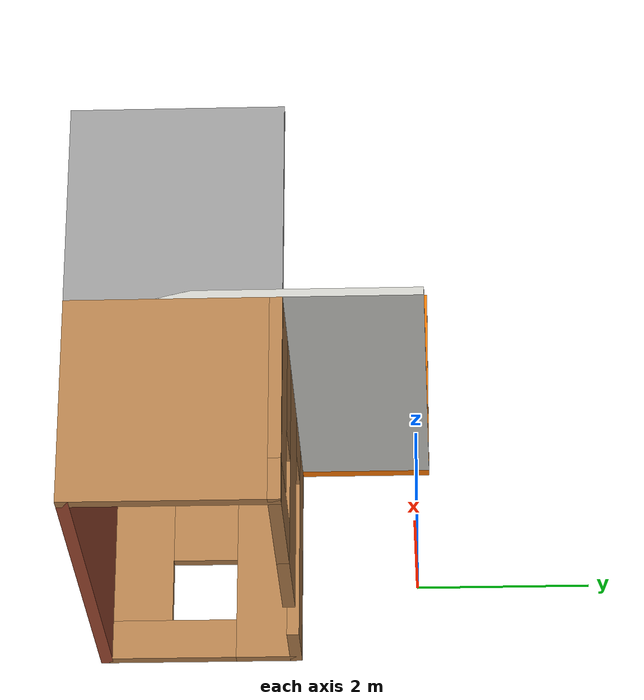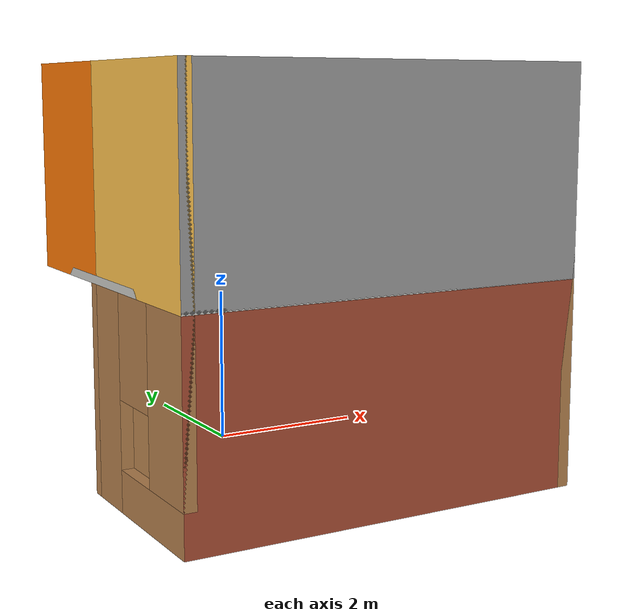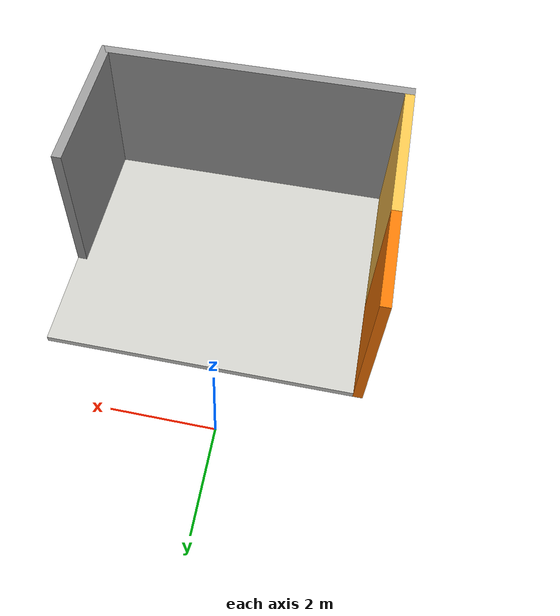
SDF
<?xml version='1.0'?>
<sdf version='1.6'>
  <model name='Roost'>
    <pose frame=''>0.155 -1.915 0 0 -0 0</pose>
    <link name='Floor_2'>
      <collision name='Floor_2_Collision'>
        <geometry>
          <box>
            <size>5 4.1 0.1</size>
          </box>
        </geometry>
        <pose frame=''>0 0 0.05 0 -0 0</pose>
      </collision>
      <visual name='Floor_2_Visual'>
        <pose frame=''>0 0 0.05 0 -0 0</pose>
        <geometry>
          <box>
            <size>5 4.1 0.1</size>
          </box>
        </geometry>
        <material>
          <script>
            <uri>file://media/materials/scripts/gazebo.material</uri>
            <name>Gazebo/CeilingTiled</name>
          </script>
          <ambient>1 1 1 1</ambient>
        </material>
        <meta>
          <layer>1</layer>
        </meta>
      </visual>
      <pose frame=''>0 0 2.5 0 -0 0</pose>
    </link>
    <link name='Wall_0'>
      <pose frame=''>-2.425 -0.8 0 0 -0 -1.5708</pose>
      <visual name='Wall_0_Visual_0'>
        <pose frame=''>-0.842552 0 1.25 0 -0 0</pose>
        <geometry>
          <box>
            <size>0.814896 0.15 2.5</size>
          </box>
        </geometry>
        <material>
          <script>
            <uri>file://media/materials/scripts/gazebo.material</uri>
            <name>Gazebo/Wood</name>
          </script>
          <ambient>1 1 1 1</ambient>
        </material>
        <meta>
          <layer>0</layer>
        </meta>
      </visual>
      <collision name='Wall_0_Collision_0'>
        <geometry>
          <box>
            <size>0.814896 0.15 2.5</size>
          </box>
        </geometry>
        <pose frame=''>-0.842552 0 1.25 0 -0 0</pose>
      </collision>
      <visual name='Wall_0_Visual_1'>
        <pose frame=''>0.407448 0 0.25 0 -0 0</pose>
        <geometry>
          <box>
            <size>1.6851 0.15 0.5</size>
          </box>
        </geometry>
        <material>
          <script>
            <uri>file://media/materials/scripts/gazebo.material</uri>
            <name>Gazebo/Wood</name>
          </script>
          <ambient>1 1 1 1</ambient>
        </material>
        <meta>
          <layer>0</layer>
        </meta>
      </visual>
      <collision name='Wall_0_Collision_1'>
        <geometry>
          <box>
            <size>1.6851 0.15 0.5</size>
          </box>
        </geometry>
        <pose frame=''>0.407448 0 0.25 0 -0 0</pose>
      </collision>
      <visual name='Wall_0_Visual_2'>
        <pose frame=''>0.807448 0 1.5 0 -0 0</pose>
        <geometry>
          <box>
            <size>0.885104 0.15 2</size>
          </box>
        </geometry>
        <material>
          <script>
            <uri>file://media/materials/scripts/gazebo.material</uri>
            <name>Gazebo/Wood</name>
          </script>
          <ambient>1 1 1 1</ambient>
        </material>
        <meta>
          <layer>0</layer>
        </meta>
      </visual>
      <collision name='Wall_0_Collision_2'>
        <geometry>
          <box>
            <size>0.885104 0.15 2</size>
          </box>
        </geometry>
        <pose frame=''>0.807448 0 1.5 0 -0 0</pose>
      </collision>
      <visual name='Wall_0_Visual_3'>
        <pose frame=''>-0.035104 0 1.9 0 -0 0</pose>
        <geometry>
          <box>
            <size>0.8 0.15 1.2</size>
          </box>
        </geometry>
        <material>
          <script>
            <uri>file://media/materials/scripts/gazebo.material</uri>
            <name>Gazebo/Wood</name>
          </script>
          <ambient>1 1 1 1</ambient>
        </material>
        <meta>
          <layer>0</layer>
        </meta>
      </visual>
      <collision name='Wall_0_Collision_3'>
        <geometry>
          <box>
            <size>0.8 0.15 1.2</size>
          </box>
        </geometry>
        <pose frame=''>-0.035104 0 1.9 0 -0 0</pose>
      </collision>
    </link>
    <link name='Wall_1'>
      <collision name='Wall_1_Collision'>
        <geometry>
          <box>
            <size>5 0.15 2.5</size>
          </box>
        </geometry>
        <pose frame=''>0 0 1.25 0 -0 0</pose>
      </collision>
      <visual name='Wall_1_Visual'>
        <pose frame=''>0 0 1.25 0 -0 0</pose>
        <geometry>
          <box>
            <size>5 0.15 2.5</size>
          </box>
        </geometry>
        <material>
          <script>
            <uri>file://media/materials/scripts/gazebo.material</uri>
            <name>Gazebo/Bricks</name>
          </script>
          <ambient>1 1 1 1</ambient>
        </material>
        <meta>
          <layer>0</layer>
        </meta>
      </visual>
      <pose frame=''>0 -1.975 0 0 -0 0</pose>
    </link>
    <link name='Wall_19'>
      <collision name='Wall_19_Collision'>
        <geometry>
          <box>
            <size>2.5 0.15 2.5</size>
          </box>
        </geometry>
        <pose frame=''>0 0 1.25 0 -0 0</pose>
      </collision>
      <visual name='Wall_19_Visual'>
        <pose frame=''>0 0 1.25 0 -0 0</pose>
        <geometry>
          <box>
            <size>2.5 0.15 2.5</size>
          </box>
        </geometry>
        <material>
          <script>
            <uri>file://media/materials/scripts/gazebo.material</uri>
            <name>Gazebo/Grey</name>
          </script>
          <ambient>1 0.764706 0.305882 1</ambient>
        </material>
        <meta>
          <layer>1</layer>
        </meta>
      </visual>
      <pose frame=''>-2.425 -0.8 2.5 0 -0 -1.5708</pose>
    </link>
    <link name='Wall_2'>
      <collision name='Wall_2_Collision'>
        <geometry>
          <box>
            <size>2.5 0.15 2.5</size>
          </box>
        </geometry>
        <pose frame=''>0 0 1.25 0 -0 0</pose>
      </collision>
      <visual name='Wall_2_Visual'>
        <pose frame=''>0 0 1.25 0 -0 0</pose>
        <geometry>
          <box>
            <size>2.5 0.15 2.5</size>
          </box>
        </geometry>
        <material>
          <script>
            <uri>file://media/materials/scripts/gazebo.material</uri>
            <name>Gazebo/Wood</name>
          </script>
          <ambient>1 1 1 1</ambient>
        </material>
        <meta>
          <layer>0</layer>
        </meta>
      </visual>
      <pose frame=''>2.425 -0.8 0 0 -0 1.5708</pose>
    </link>
    <link name='Wall_20'>
      <collision name='Wall_20_Collision'>
        <geometry>
          <box>
            <size>5 0.15 2.5</size>
          </box>
        </geometry>
        <pose frame=''>0 0 1.25 0 -0 0</pose>
      </collision>
      <visual name='Wall_20_Visual'>
        <pose frame=''>0 0 1.25 0 -0 0</pose>
        <geometry>
          <box>
            <size>5 0.15 2.5</size>
          </box>
        </geometry>
        <material>
          <script>
            <uri>file://media/materials/scripts/gazebo.material</uri>
            <name>Gazebo/Grey</name>
          </script>
          <ambient>1 1 1 1</ambient>
        </material>
        <meta>
          <layer>1</layer>
        </meta>
      </visual>
      <pose frame=''>0 -1.975 2.5 0 -0 0</pose>
    </link>
    <link name='Wall_21'>
      <collision name='Wall_21_Collision'>
        <geometry>
          <box>
            <size>2.5 0.15 2.5</size>
          </box>
        </geometry>
        <pose frame=''>0 0 1.25 0 -0 0</pose>
      </collision>
      <visual name='Wall_21_Visual'>
        <pose frame=''>0 0 1.25 0 -0 0</pose>
        <geometry>
          <box>
            <size>2.5 0.15 2.5</size>
          </box>
        </geometry>
        <material>
          <script>
            <uri>file://media/materials/scripts/gazebo.material</uri>
            <name>Gazebo/Grey</name>
          </script>
          <ambient>1 1 1 1</ambient>
        </material>
        <meta>
          <layer>1</layer>
        </meta>
      </visual>
      <pose frame=''>2.425 -0.8 2.5 0 -0 1.5708</pose>
    </link>
    <link name='Wall_24'>
      <collision name='Wall_24_Collision'>
        <geometry>
          <box>
            <size>1.75 0.15 2.5</size>
          </box>
        </geometry>
        <pose frame=''>0 0 1.25 0 -0 0</pose>
      </collision>
      <visual name='Wall_24_Visual'>
        <pose frame=''>0 0 1.25 0 -0 0</pose>
        <geometry>
          <box>
            <size>1.75 0.15 2.5</size>
          </box>
        </geometry>
        <material>
          <script>
            <uri>file://media/materials/scripts/gazebo.material</uri>
            <name>Gazebo/Grey</name>
          </script>
          <ambient>0.996078 0.47451 0.0196078 1</ambient>
        </material>
        <meta>
          <layer>1</layer>
        </meta>
      </visual>
      <pose frame=''>-2.425 1.175 2.5 0 -0 1.5708</pose>
    </link>
    <link name='Wall_27'>
      <pose frame=''>0 0.375 0 0 -0 0</pose>
      <visual name='Wall_27_Visual_0'>
        <pose frame=''>-2.05224 0 1.25 0 -0 0</pose>
        <geometry>
          <box>
            <size>0.895519 0.15 2.5</size>
          </box>
        </geometry>
        <material>
          <script>
            <uri>file://media/materials/scripts/gazebo.material</uri>
            <name>Gazebo/Wood</name>
          </script>
          <ambient>1 1 1 1</ambient>
        </material>
        <meta>
          <layer>0</layer>
        </meta>
      </visual>
      <collision name='Wall_27_Collision_0'>
        <geometry>
          <box>
            <size>0.895519 0.15 2.5</size>
          </box>
        </geometry>
        <pose frame=''>-2.05224 0 1.25 0 -0 0</pose>
      </collision>
      <visual name='Wall_27_Visual_1'>
        <pose frame=''>-0.03198 0 1.25 0 -0 0</pose>
        <geometry>
          <box>
            <size>1.345 0.15 2.5</size>
          </box>
        </geometry>
        <material>
          <script>
            <uri>file://media/materials/scripts/gazebo.material</uri>
            <name>Gazebo/Wood</name>
          </script>
          <ambient>1 1 1 1</ambient>
        </material>
        <meta>
          <layer>0</layer>
        </meta>
      </visual>
      <collision name='Wall_27_Collision_1'>
        <geometry>
          <box>
            <size>1.345 0.15 2.5</size>
          </box>
        </geometry>
        <pose frame=''>-0.03198 0 1.25 0 -0 0</pose>
      </collision>
      <visual name='Wall_27_Visual_2'>
        <pose frame=''>1.57026 0 0.25 0 -0 0</pose>
        <geometry>
          <box>
            <size>1.85948 0.15 0.5</size>
          </box>
        </geometry>
        <material>
          <script>
            <uri>file://media/materials/scripts/gazebo.material</uri>
            <name>Gazebo/Wood</name>
          </script>
          <ambient>1 1 1 1</ambient>
        </material>
        <meta>
          <layer>0</layer>
        </meta>
      </visual>
      <collision name='Wall_27_Collision_2'>
        <geometry>
          <box>
            <size>1.85948 0.15 0.5</size>
          </box>
        </geometry>
        <pose frame=''>1.57026 0 0.25 0 -0 0</pose>
      </collision>
      <visual name='Wall_27_Visual_3'>
        <pose frame=''>1.97026 0 1.5 0 -0 0</pose>
        <geometry>
          <box>
            <size>1.05948 0.15 2</size>
          </box>
        </geometry>
        <material>
          <script>
            <uri>file://media/materials/scripts/gazebo.material</uri>
            <name>Gazebo/Wood</name>
          </script>
          <ambient>1 1 1 1</ambient>
        </material>
        <meta>
          <layer>0</layer>
        </meta>
      </visual>
      <collision name='Wall_27_Collision_3'>
        <geometry>
          <box>
            <size>1.05948 0.15 2</size>
          </box>
        </geometry>
        <pose frame=''>1.97026 0 1.5 0 -0 0</pose>
      </collision>
      <visual name='Wall_27_Visual_4'>
        <pose frame=''>1.04052 0 1.9 0 -0 0</pose>
        <geometry>
          <box>
            <size>0.8 0.15 1.2</size>
          </box>
        </geometry>
        <material>
          <script>
            <uri>file://media/materials/scripts/gazebo.material</uri>
            <name>Gazebo/Wood</name>
          </script>
          <ambient>1 1 1 1</ambient>
        </material>
        <meta>
          <layer>0</layer>
        </meta>
      </visual>
      <collision name='Wall_27_Collision_4'>
        <geometry>
          <box>
            <size>0.8 0.15 1.2</size>
          </box>
        </geometry>
        <pose frame=''>1.04052 0 1.9 0 -0 0</pose>
      </collision>
      <visual name='Wall_27_Visual_5'>
        <pose frame=''>-1.15448 0 2.25 0 -0 0</pose>
        <geometry>
          <box>
            <size>0.9 0.15 0.5</size>
          </box>
        </geometry>
        <material>
          <script>
            <uri>file://media/materials/scripts/gazebo.material</uri>
            <name>Gazebo/Wood</name>
          </script>
          <ambient>1 1 1 1</ambient>
        </material>
        <meta>
          <layer>0</layer>
        </meta>
      </visual>
      <collision name='Wall_27_Collision_5'>
        <geometry>
          <box>
            <size>0.9 0.15 0.5</size>
          </box>
        </geometry>
        <pose frame=''>-1.15448 0 2.25 0 -0 0</pose>
      </collision>
    </link>
    <static>1</static>
  </model>
</sdf>
